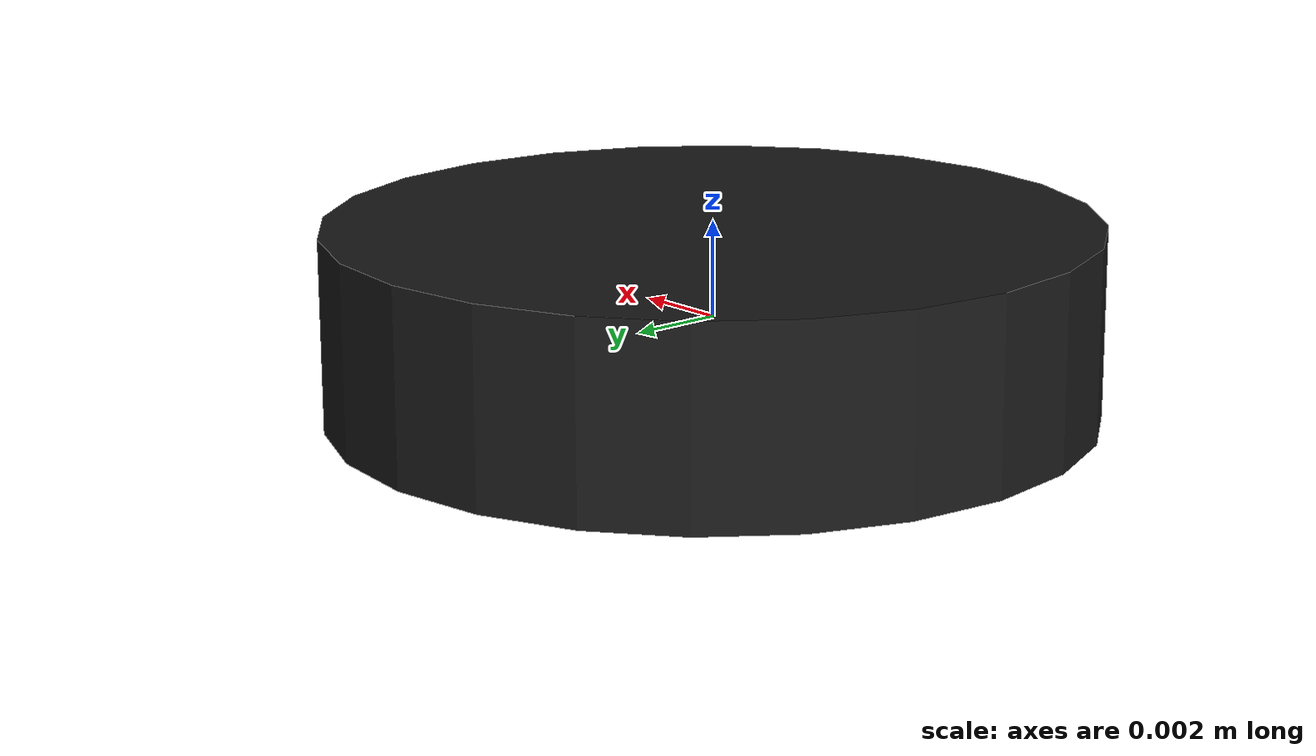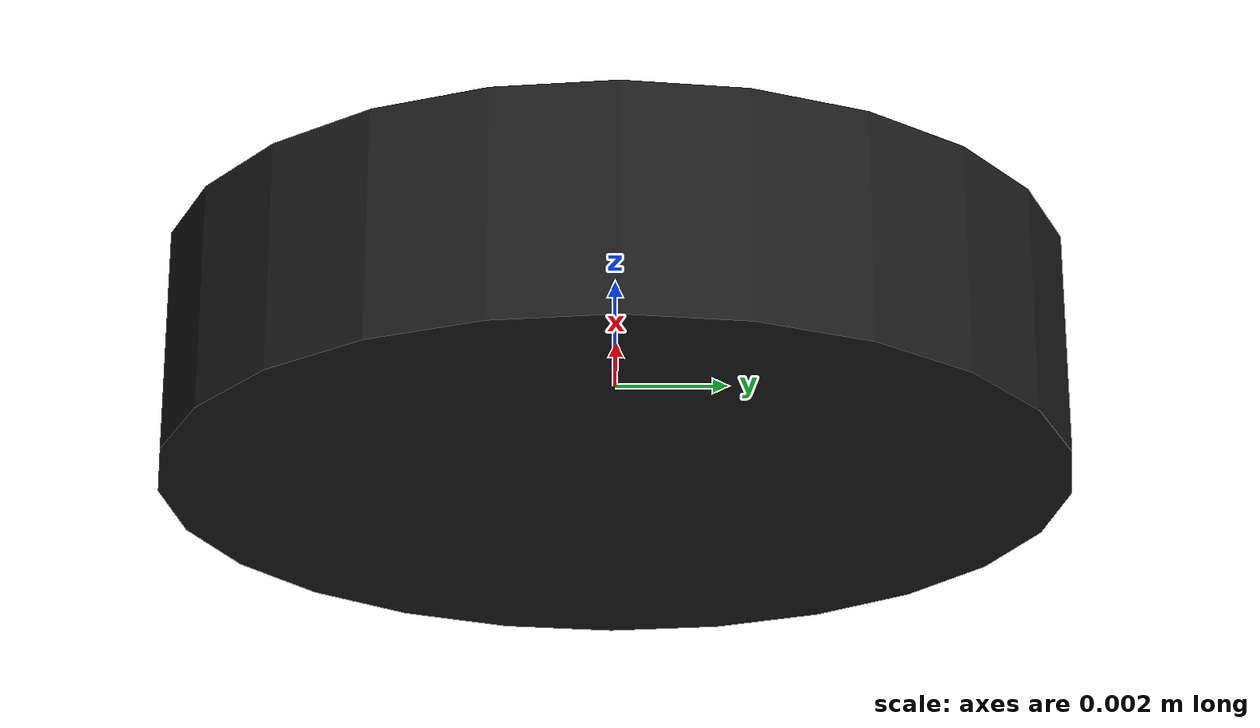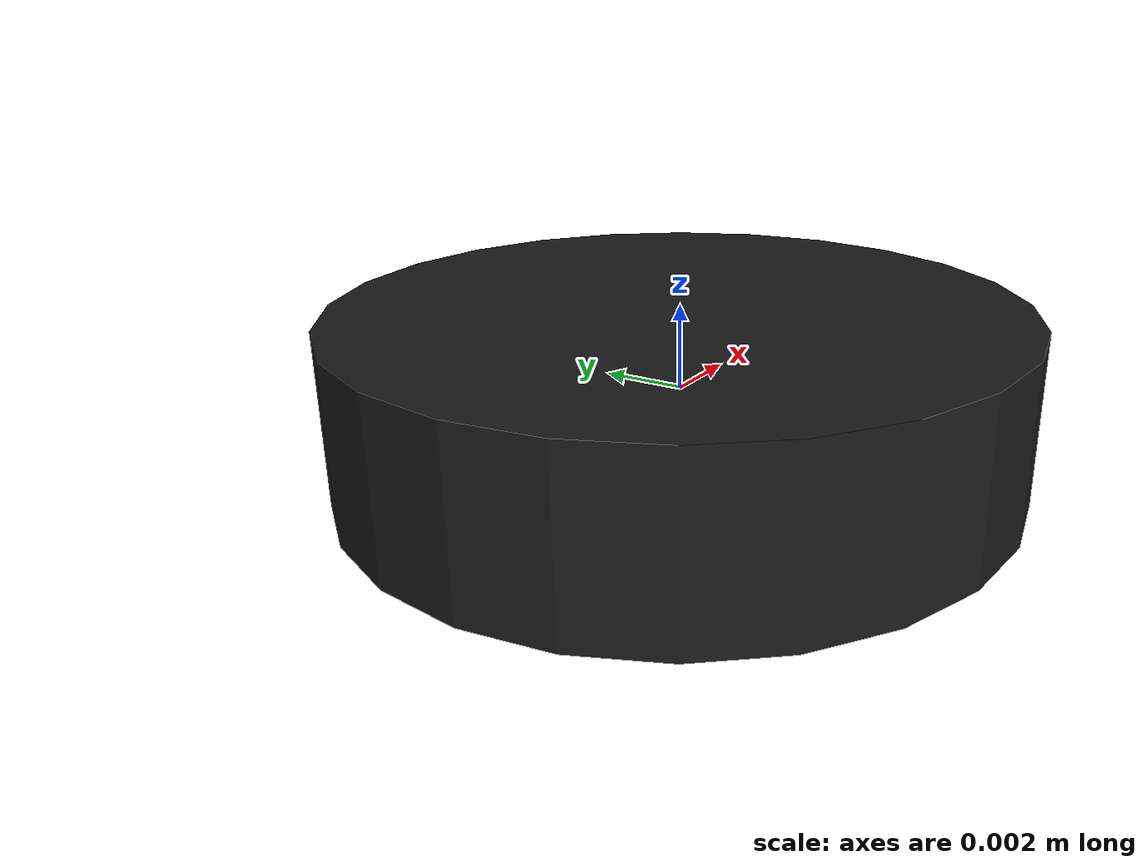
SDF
<?xml version="1.0"?>
<sdf version="1.9">
    <model name="microphone">
        <link name="microphone">
            <inertial>
                <mass>0.002</mass>
                <inertia>
                    <ixx>1.0e-07</ixx>
                    <ixy>0</ixy>
                    <ixz>0</ixz>
                    <iyy>1.0e-07</iyy>
                    <iyz>0</iyz>
                    <izz>1.0e-07</izz>
                </inertia>
            </inertial>
            <visual name='visual'>
                <geometry>
                    <cylinder>
                        <radius>0.008</radius>
                        <length>0.004</length>
                    </cylinder>
                </geometry>
                <material>
                    <diffuse>0.1 0.1 0.1 1</diffuse>
                </material>
            </visual>
        </link>
        <frame name="mount_point"/>
    </model>
</sdf>
